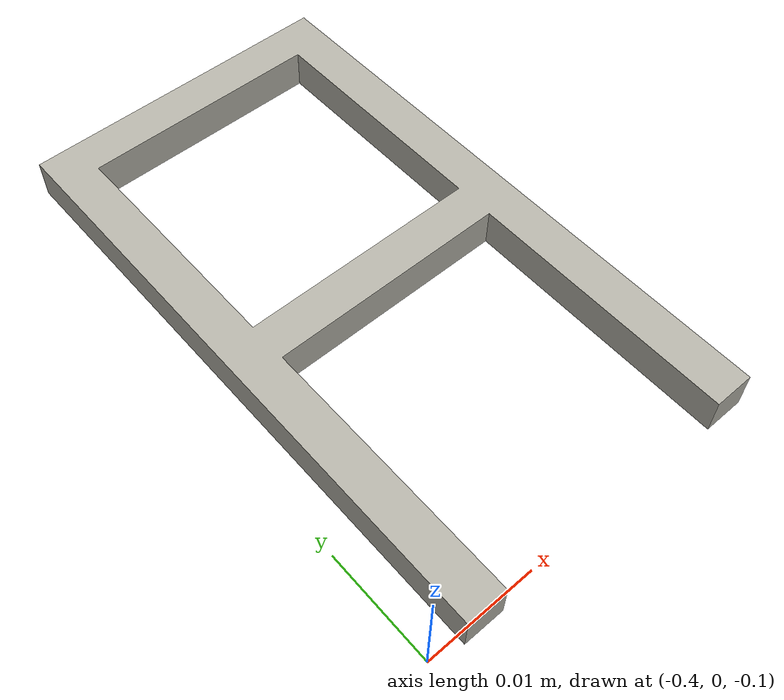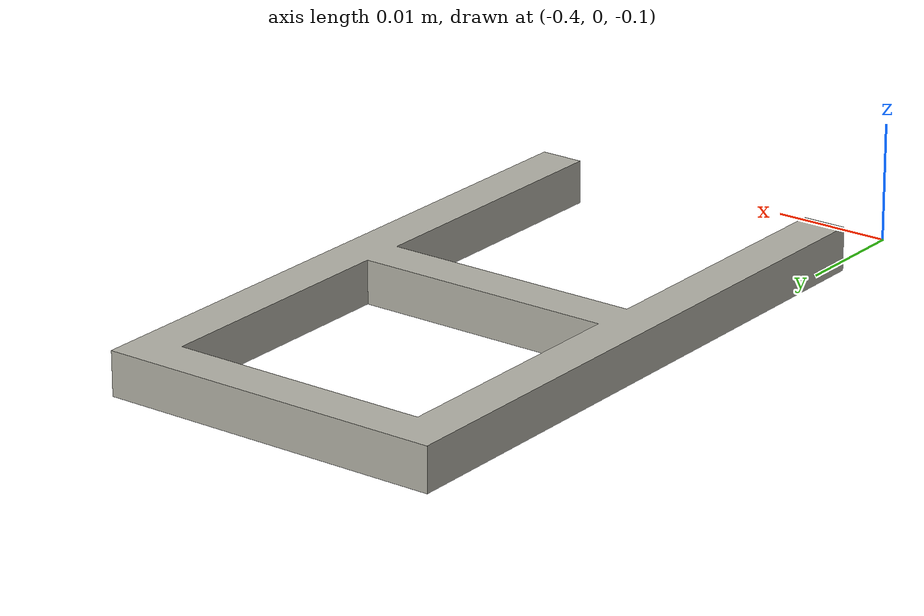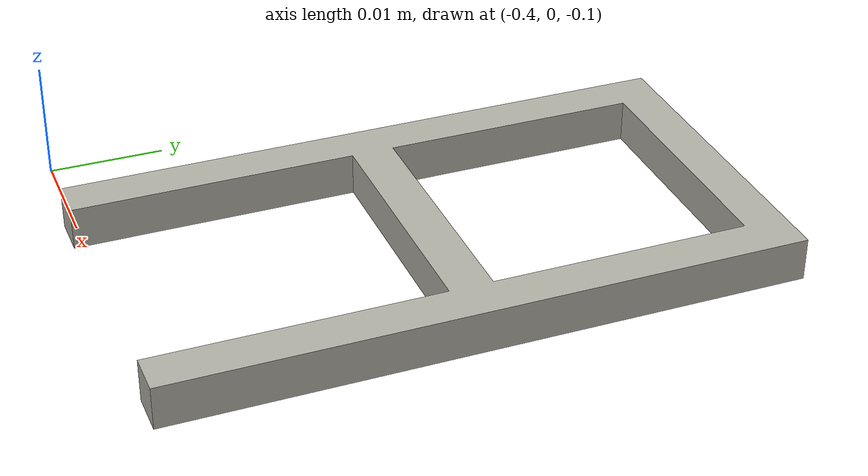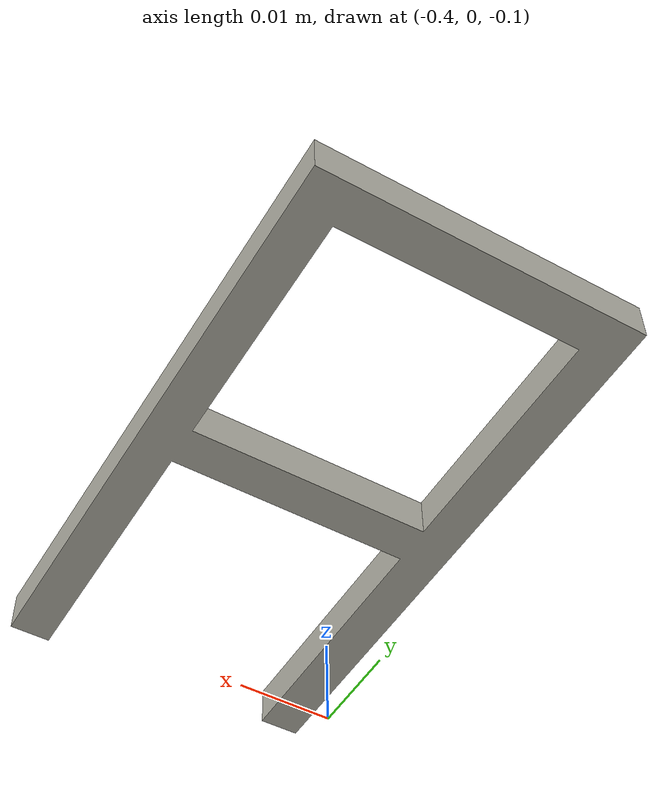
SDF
<?xml version="1.0" ?>
<sdf version="1.6">
  <model name="model01">
    <link name="link">
      <inertial>
        <mass>1</mass>
      </inertial>
      <visual name="visual">
	    <geometry>
          <mesh>
            <uri>file://models/model01/meshes/sqaure_window_90cm.DAE</uri>
          </mesh>
        </geometry>
      <meta> <layer> 1 </layer></meta>
</visual>
    </link>
	<static>1</static>
  </model>
</sdf>
